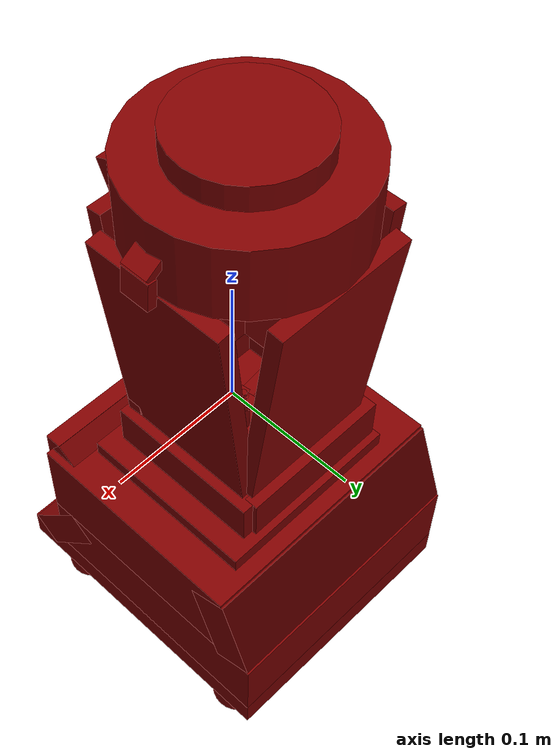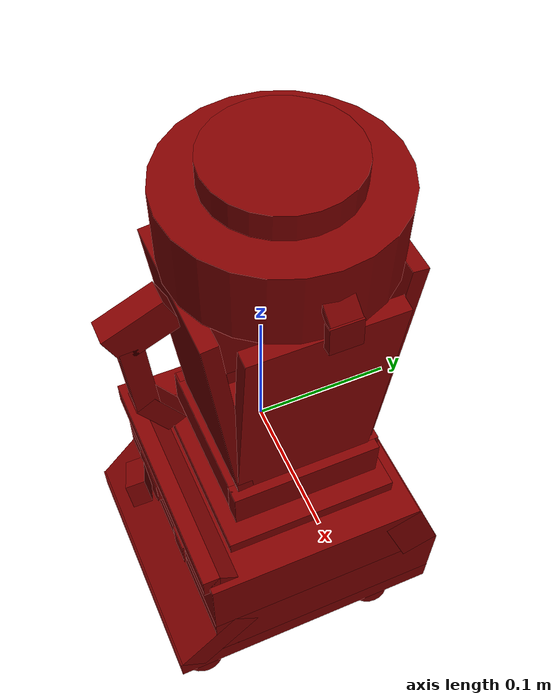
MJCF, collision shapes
<?xml version='1.0' encoding='UTF-8'?>
<mujoco model="model">
  <option timestep="0.002" gravity="0.0 0.0 -9.81"/>
  <compiler angle="radian"/>
  <asset>
    <mesh file="visuals/Blade001.obj" name="Blade001_vis"/>
    <mesh file="visuals/Body001.obj" name="Body001_vis"/>
    <mesh file="visuals/Button001.obj" name="Button001_vis"/>
    <mesh file="visuals/Jug001.obj" name="Jug001_vis"/>
    <mesh file="visuals/Jug001_Clear.obj" name="Jug001_Clear_vis"/>
    <mesh file="visuals/Knob001.obj" name="Knob001_vis"/>
    <mesh file="visuals/Lid001.obj" name="Lid001_vis"/>
    <mesh file="visuals/Lid001_Clear.obj" name="Lid001_Clear_vis"/>
    <texture file="visuals/T_BC001.png" name="Body001_material" type="2d"/>
    <material name="Body001_material" rgba="1 1 1 1.0" texture="Body001_material" shininess="0.12328028678894" specular="5"/>
    <texture file="visuals/T_BC001.png" name="Button001_material" type="2d"/>
    <material name="Button001_material" rgba="1 1 1 1.0" texture="Button001_material" shininess="0.2512328028678894" specular="0.3103448502657381"/>
    <texture file="visuals/T_BC001.png" name="Jug001_material" type="2d"/>
    <material name="Jug001_material" rgba="1 1 1 1.0" texture="Jug001_material" shininess="0.2512328028678894" specular="0.3103448502657381"/>
    <material name="Jug001_Clear_material" rgba="0.034405842423439026 0.034405842423439026 0.034405842423439026 0.800000011920929" shininess="0.2512328028678894" specular="0.3103448502657381"/>
    <texture file="visuals/T_BC001.png" name="Blade001_material" type="2d"/>
    <material name="Blade001_material" rgba="1 1 1 1.0" texture="Blade001_material" shininess="0.2512328028678894" specular="1"/>
    <texture file="visuals/T_BC001.png" name="Lid001_material" type="2d"/>
    <material name="Lid001_material" rgba="1 1 1 1.0" texture="Lid001_material" shininess="0.2512328028678894" specular="0.3103448502657381"/>
    <material name="Lid001_Clear_material" rgba="0.034405842423439026 0.034405842423439026 0.034405842423439026 0.800000011920929" shininess="0.2512328028678894" specular="0.3103448502657381"/>
    <texture file="visuals/T_BC001.png" name="Knob001_material" type="2d"/>
    <material name="Knob001_material" rgba="1 1 1 1.0" texture="Knob001_material" shininess="0.2512328028678894" specular="0.3103448502657381"/>
  </asset>
  <default>
    <default class="visual">
      <geom conaffinity="0" contype="0" group="1" type="mesh"/>
    </default>
    <default class="collision">
      <geom group="0" rgba="0.5 0 0 0.5"/>
    </default>
    <default class="spawn">
      <geom group="0" rgba="1 1 1 0.5" contype="0" conaffinity="0"/>
      <site group="0" rgba="1 1 1 0.5"/>
    </default>
    <default class="region">
      <geom group="1" conaffinity="0" contype="0" rgba="0 1 0 0"/>
    </default>
  </default>
  <worldbody>
    <body>
      <body name="object">
        <geom mesh="Body001_vis" type="mesh" solimp="0.998 0.998 0.001" solref="0.001 1" friction="0.95 0.3 0.1" class="visual" material="Body001_material"/>
        <geom class="collision" type="box" pos="0.00004191 -0.00474401 -0.21063316" size="0.07199929654598236 0.08503086864948273 0.023351645097136497" quat="1.0 0.0 0.0 0.0"/>
        <geom class="collision" type="box" pos="0.00000000 -0.00014645 -0.17650174" size="0.09943097084760666 0.113368920981884 0.01077827624976635" quat="1.0 0.0 0.0 0.0"/>
        <geom class="collision" type="box" pos="-0.00000000 0.01614844 -0.13947275" size="0.09943098574876785 0.09688141196966171 0.02712395414710045" quat="1.0 0.0 0.0 0.0"/>
        <geom class="collision" type="box" pos="-0.00376587 0.01344736 -0.03389696" size="0.047960978001356125 0.046660613268613815 0.006251452956348658" quat="1.0 0.0 0.0 0.0"/>
        <geom class="collision" type="box" pos="0.00004191 -0.01270072 -0.18609066" size="0.07199942320585251 0.09150265902280807 0.023351676762104034" quat="1.0 0.0 0.0 0.0"/>
        <geom class="collision" type="box" pos="0.02975268 0.08612290 -0.19637907" size="0.03190840035676956 0.013986317440867424 0.011905279941856861" quat="0.9989776611328125 0.0 -0.0 -0.045206304639577866"/>
        <geom class="collision" type="box" pos="-0.03155254 0.08310511 -0.19608465" size="0.03190840035676956 0.013986317440867424 0.011905279941856861" quat="0.9983143210411072 0.0 0.0 0.0580388642847538"/>
        <geom class="collision" type="box" pos="0.00128349 -0.00629347 -0.19180083" size="0.08547767996788025 0.08503101021051407 0.004519361536949873" quat="1.0 0.0 0.0 0.0"/>
        <geom class="collision" type="box" pos="0.00000000 -0.07877731 -0.14790840" size="0.09943116456270218 0.035607967525720596 0.01294387225061655" quat="0.9136365652084351 0.4065319895744324 -9.026823501444178e-17 1.4775024558524175e-24"/>
        <geom class="collision" type="cylinder" pos="-0.07031364 -0.08765264 -0.23282127" size="0.00947424117475748 0.00947424117475748" quat="1.0 0.0 0.0 0.0"/>
        <geom class="collision" type="cylinder" pos="-0.07031364 -0.08765264 -0.20891726" size="0.0194860827177763 0.023954443633556366" quat="1.0 0.0 0.0 0.0"/>
        <geom class="collision" type="cylinder" pos="0.07012229 -0.08788109 -0.23282127" size="0.00947424117475748 0.00947424117475748" quat="1.0 0.0 0.0 0.0"/>
        <geom class="collision" type="cylinder" pos="0.07012229 -0.08788109 -0.20891726" size="0.0194860827177763 0.023954443633556366" quat="1.0 0.0 0.0 0.0"/>
        <geom class="collision" type="cylinder" pos="0.07017411 0.07598721 -0.23282127" size="0.00947424117475748 0.00947424117475748" quat="1.0 0.0 0.0 0.0"/>
        <geom class="collision" type="cylinder" pos="0.07017411 0.07598721 -0.20891726" size="0.0194860827177763 0.023954443633556366" quat="1.0 0.0 0.0 0.0"/>
        <geom class="collision" type="cylinder" pos="-0.07015801 0.07610055 -0.23282127" size="0.00947424117475748 0.00947424117475748" quat="1.0 0.0 0.0 0.0"/>
        <geom class="collision" type="cylinder" pos="-0.07015801 0.07610055 -0.20891726" size="0.0194860827177763 0.023954443633556366" quat="1.0 0.0 0.0 0.0"/>
        <geom class="collision" type="box" pos="-0.00000000 0.00345156 -0.08181716" size="0.099431112408638 0.08418465405702591 0.03178555518388748" quat="1.0 0.0 0.0 0.0"/>
        <geom class="collision" type="box" pos="-0.00000000 0.08656062 -0.08686393" size="0.09943114966154099 0.015107588842511177 0.031785573810338974" quat="0.983220100402832 0.18242338299751282 -4.050612800677041e-17 -3.853210320036597e-25"/>
        <geom class="collision" type="box" pos="0.00372709 0.01006931 -0.04877172" size="0.07046279311180115 0.06620841473340988 0.009505023248493671" quat="1.0 0.0 0.0 0.0"/>
        <geom class="collision" type="box" pos="0.00035559 -0.07876443 -0.04877172" size="0.09373795241117477 0.006440823432058096 0.009505023248493671" quat="1.0 0.0 0.0 0.0"/>
        <geom class="collision" type="box" pos="0.00035559 -0.06896617 -0.05022398" size="0.09373795241117477 0.006440823432058096 0.009505022317171097" quat="0.894934356212616 0.44619783759117126 0.0 0.0"/>
        <body name="Button001">
          <joint axis="0.0 1.0 0.0" pos="0.03732334 -0.08295390 -0.08242288" limited="true" name="Button001_joint" range="0.0 0.002" type="slide" damping="1" frictionloss="1" armature=".01" stiffness="0.05"/>
          <geom mesh="Button001_vis" type="mesh" solimp="0.998 0.998 0.001" solref="0.001 1" friction="0.95 0.3 0.1" class="visual" material="Button001_material"/>
          <geom class="collision" type="box" pos="0.03758665 -0.08462512 -0.08183734" size="0.010003328323364258 0.0008242419571615756 0.01193332765251398" quat="1.0 0.0 0.0 0.0"/>
        </body>
        <body name="Jug001">
          <joint axis="0.0 0.0 1.0" pos="0.00148116 -0.07950702 0.10043825" limited="true" name="Jug001_joint" range="0.0 0.05" type="slide" damping="1" frictionloss="1" armature=".01" stiffness="0.05"/>
          <geom mesh="Jug001_vis" type="mesh" solimp="0.998 0.998 0.001" solref="0.001 1" friction="0.95 0.3 0.1" class="visual" material="Jug001_material"/>
          <geom class="collision" type="box" pos="-0.05771216 0.01383475 0.08279391" size="0.005711276549845934 0.051372114568948746 0.08431754261255264" quat="0.9983683228492737 1.9271728888270445e-06 -0.05710252374410629 3.367393946973607e-05"/>
          <geom class="collision" type="box" pos="0.00347884 -0.04465861 0.08283752" size="0.005711277015507221 0.051372114568948746 0.08431755006313324" quat="0.7059291005134583 0.04037894681096077 -0.04037623107433319 0.7059769034385681"/>
          <geom class="collision" type="box" pos="0.05768050 0.01049492 0.08203966" size="0.005711276549845934 0.051372114568948746 0.08431754261255264" quat="3.637487316154875e-05 -0.05710252374410629 -2.0803652205358958e-06 -0.9983683228492737"/>
          <geom class="collision" type="box" pos="-0.00148238 0.07039853 0.08288905" size="0.005711276549845934 0.051372114568948746 0.08431754261255264" quat="0.7059786319732666 -0.04037610441446304 -0.04037903994321823 -0.7059273719787598"/>
          <geom class="collision" type="box" pos="0.05275339 0.01160286 -0.02129288" size="0.006559801287949085 0.057112209498882294 0.015429945662617683" quat="1.0 0.0 0.0 0.0"/>
          <geom class="collision" type="box" pos="-0.00582938 0.06694266 -0.02129288" size="0.057111989706754684 0.005001084879040718 0.015429931692779064" quat="1.0 0.0 0.0 0.0"/>
          <geom class="collision" type="box" pos="-0.05833406 0.01328734 -0.02129288" size="0.0046172006987035275 0.057111889123916626 0.015429917722940445" quat="1.0 0.0 0.0 0.0"/>
          <geom class="collision" type="box" pos="-0.00583968 -0.04036652 -0.02129288" size="0.05711181461811066 0.004630060400813818 0.015429902821779251" quat="1.0 0.0 0.0 0.0"/>
          <geom class="collision" type="box" pos="0.00097299 -0.08581212 0.09879330" size="0.009137513116002083 0.008098731748759747 0.030896702781319618" quat="0.9994240999221802 0.033934105187654495 0.0 0.0"/>
          <geom class="collision" type="box" pos="0.00136547 -0.07583934 0.05521958" size="0.00874503143131733 0.007932057604193687 0.018651528283953667" quat="0.9616867899894714 0.274150550365448 0.0 0.0"/>
          <geom class="collision" type="box" pos="0.00131615 -0.07957146 0.14208938" size="0.008794349618256092 0.013537919148802757 0.021831490099430084" quat="0.8395240306854248 -0.5433225631713867 -0.0 0.0"/>
          <body name="Jug001_Clear">
            <geom class="region" name="reg_int" type="box" pos="0.0 0.01340965 0.08845178499999999" size="0.04300508 0.04295475 0.079410985"/>
            <geom mesh="Jug001_Clear_vis" type="mesh" solimp="0.998 0.998 0.001" solref="0.001 1" friction="0.95 0.3 0.1" class="visual" material="Jug001_Clear_material"/>
            <geom class="collision" type="box" pos="-0.05771216 0.01383475 0.08279391" size="0.005711276549845934 0.051372114568948746 0.08431754261255264" quat="0.9983683228492737 1.9271728888270445e-06 -0.05710252374410629 3.367393946973607e-05"/>
            <geom class="collision" type="box" pos="0.00347884 -0.04465861 0.08283752" size="0.005711277015507221 0.051372114568948746 0.08431755006313324" quat="0.7059291005134583 0.04037894681096077 -0.04037623107433319 0.7059769034385681"/>
            <geom class="collision" type="box" pos="0.05768050 0.01049492 0.08203966" size="0.005711276549845934 0.051372114568948746 0.08431754261255264" quat="3.637487316154875e-05 -0.05710252374410629 -2.0803652205358958e-06 -0.9983683228492737"/>
            <geom class="collision" type="box" pos="-0.00148238 0.07039853 0.08288905" size="0.005711276549845934 0.051372114568948746 0.08431754261255264" quat="0.7059786319732666 -0.04037610441446304 -0.04037903994321823 -0.7059273719787598"/>
            <geom class="collision" type="box" pos="0.05275339 0.01160286 -0.02129288" size="0.006559801287949085 0.057112209498882294 0.015429945662617683" quat="1.0 0.0 0.0 0.0"/>
            <geom class="collision" type="box" pos="-0.00582938 0.06694266 -0.02129288" size="0.057111989706754684 0.005001084879040718 0.015429931692779064" quat="1.0 0.0 0.0 0.0"/>
            <geom class="collision" type="box" pos="-0.05833406 0.01328734 -0.02129288" size="0.0046172006987035275 0.057111889123916626 0.015429917722940445" quat="1.0 0.0 0.0 0.0"/>
            <geom class="collision" type="box" pos="-0.00583968 -0.04036652 -0.02129288" size="0.05711181461811066 0.004630060400813818 0.015429902821779251" quat="1.0 0.0 0.0 0.0"/>
            <body name="Blade001">
              <joint axis="0.0 0.0 1.0" pos="-0.00000003 0.01006333 -0.00781610" limited="false" name="Blade001_joint" range="0 360" type="hinge" damping="1" frictionloss="1" armature=".01" stiffness="0.05"/>
              <geom mesh="Blade001_vis" type="mesh" solimp="0.998 0.998 0.001" solref="0.001 1" friction="0.95 0.3 0.1" class="visual" material="Blade001_material"/>
              <geom class="collision" type="cylinder" pos="0.00000000 0.01007370 -0.01219207" size="0.004584804177284241 0.013087698258459568" quat="1.0 0.0 0.0 0.0"/>
              <geom class="collision" type="cylinder" pos="0.00000000 0.01007370 0.00286965" size="0.009153613820672035 0.0019740283023566008" quat="1.0 0.0 0.0 0.0"/>
              <geom class="collision" type="cylinder" pos="0.00000000 0.01007370 0.00800367" size="0.002619080478325486 0.0014288165839388967" quat="1.0 0.0 0.0 0.0"/>
              <geom class="collision" type="cylinder" pos="0.00000000 0.01007370 0.00621621" size="0.0038133717607706785 0.00035864306846633554" quat="1.0 0.0 0.0 0.0"/>
              <geom class="collision" type="box" pos="-0.01745919 0.00850269 0.00578390" size="0.01940135285258293 0.004977840930223465 0.00013571526505984366" quat="0.9986625909805298 0.0 0.0 0.05170168727636337"/>
              <geom class="collision" type="box" pos="-0.00122930 0.02742440 0.00578390" size="0.01940135285258293 0.004977840930223465 0.00013571526505984366" quat="0.753109872341156 0.0 -0.0 -0.6578947305679321"/>
              <geom class="collision" type="box" pos="0.01720731 0.01134743 0.00578390" size="0.01940135471522808 0.004977840930223465 0.00013571526505984366" quat="0.06732738763093948 0.0 -0.0 -0.9977309107780457"/>
              <geom class="collision" type="box" pos="0.00163670 -0.00764109 0.00721446" size="0.019401350989937782 0.004977840464562178 0.00013571526505984366" quat="0.6578945517539978 0.0 0.0 0.7531100511550903"/>
            </body>
            <body name="Lid001">
              <joint axis="0.0 0.0 1.0" pos="0.00107732 0.01221725 0.18494132" limited="true" name="Lid001_joint" range="0.0 0.05" type="slide" damping="1" frictionloss="1" armature=".01" stiffness="0.05"/>
              <geom mesh="Lid001_vis" type="mesh" solimp="0.998 0.998 0.001" solref="0.001 1" friction="0.95 0.3 0.1" class="visual" material="Lid001_material"/>
              <geom class="collision" type="cylinder" pos="0.00062126 0.01228982 0.19410172" size="0.07406395673751831 0.02589484490454197" quat="1.0 0.0 0.0 0.0"/>
              <geom class="collision" type="cylinder" pos="0.00079735 0.01209860 0.22750318" size="0.04734149947762489 0.009497873485088348" quat="1.0 0.0 0.0 0.0"/>
              <geom class="collision" type="box" pos="0.08221855 0.01301172 0.17868637" size="0.003188474802300334 0.010518007911741734 0.009555758908390999" quat="0.9989174008369446 0.0 -0.04651924967765808 0.0"/>
              <geom class="collision" type="box" pos="0.07725796 0.01256194 0.19180180" size="0.0028510557021945715 0.00972927175462246 0.006889546290040016" quat="0.8799977898597717 0.0 -0.4749778211116791 0.0"/>
              <geom class="collision" type="box" pos="-0.08093728 0.01212984 0.17793775" size="0.0028510557021945715 0.00972927175462246 0.00794191099703312" quat="0.9989174008369446 0.0 0.04651926830410957 0.0"/>
              <geom class="collision" type="box" pos="-0.07675544 0.01212984 0.19058423" size="0.0028510557021945715 0.00972927175462246 0.006889546290040016" quat="0.8799977898597717 0.0 0.4749777317047119 0.0"/>
              <body name="Lid001_Clear">
                <geom mesh="Lid001_Clear_vis" type="mesh" solimp="0.998 0.998 0.001" solref="0.001 1" friction="0.95 0.3 0.1" class="visual" material="Lid001_Clear_material"/>
                <geom class="collision" type="cylinder" pos="0.00079735 0.01209860 0.22750318" size="0.04734149947762489 0.009497873485088348" quat="1.0 0.0 0.0 0.0"/>
              </body>
            </body>
          </body>
        </body>
        <body name="Knob001">
          <joint axis="0.0 1.0 0.0" pos="-0.02985010 -0.08856570 -0.08345079" limited="true" name="Knob001_joint" range="0.0 4.1887902047863905" type="hinge" damping="0.05" frictionloss="0.1" armature="0.001"/>
          <geom mesh="Knob001_vis" type="mesh" solimp="0.998 0.998 0.001" solref="0.001 1" friction="0.95 0.3 0.1" class="visual" material="Knob001_material"/>
          <geom class="collision" type="cylinder" pos="-0.03046050 -0.08344376 -0.08334973" size="0.021604180335998535 0.001981839071959257" quat="0.7071067094802856 0.7071068286895752 0.0 0.0" density="0.001"/>
          <geom class="collision" type="box" pos="-0.02922417 -0.09473307 -0.08376786" size="0.007757030893117189 0.009034786373376846 0.023546382784843445" quat="0.4059410095214844 -0.6311303973197937 -0.6149581074714661 0.24230735003948212" density="0.001"/>
        </body>
        <geom class="region" name="reg_main" type="box" pos="0.0 -1.4999999999737446e-07 9.999999994736442e-09" size="0.10043116 0.11451729 0.24277204"/>
      </body>
    </body>
  </worldbody>
  <actuator>
    <motor name="Button001_joint_actuator" joint="Button001_joint" gear="0.5"/>
    <motor name="Jug001_joint_actuator" joint="Jug001_joint" gear="100"/>
    <motor name="Knob001_joint_actuator" joint="Knob001_joint" gear="10"/>
    <motor name="Blade001_joint_actuator" joint="Blade001_joint" gear="20"/>
    <motor name="Lid001_joint_actuator" joint="Lid001_joint" gear="30"/>
  </actuator>
</mujoco>
